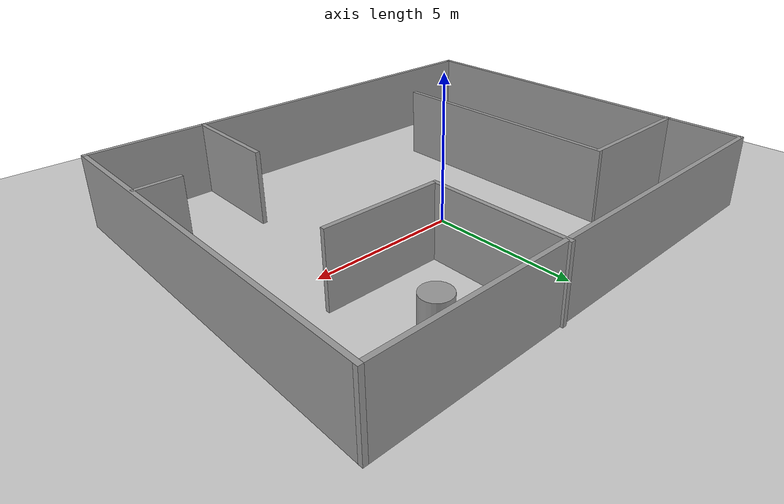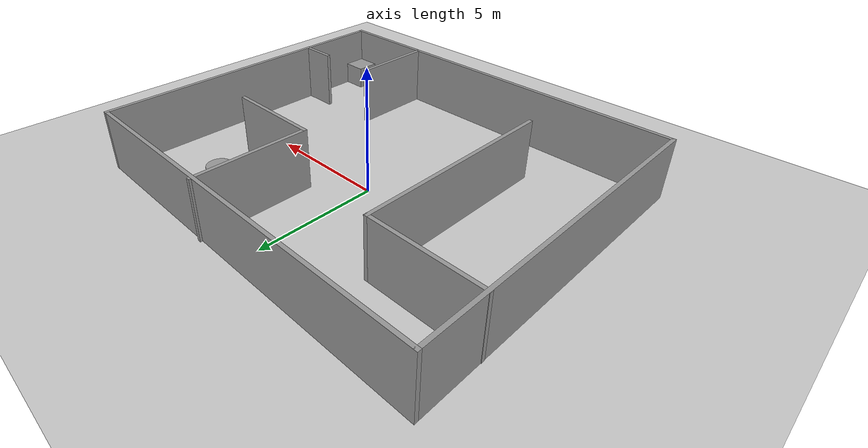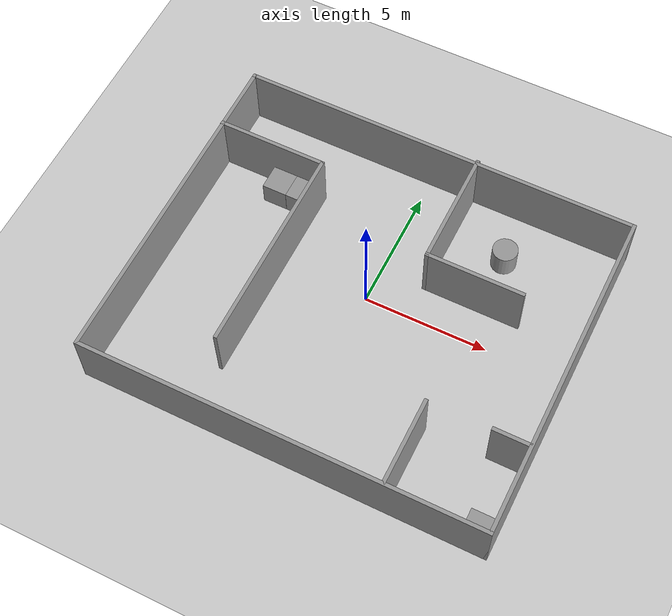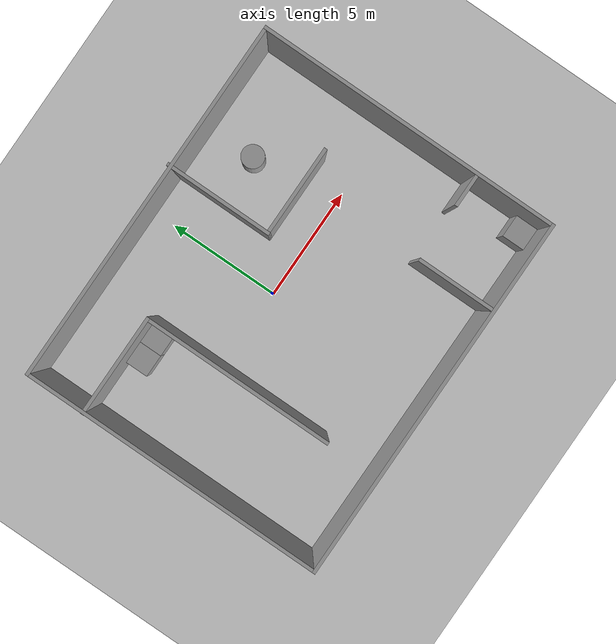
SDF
<sdf version="1.7">
 <world name="default">
  <model name="ground_plane">
   <static>1</static>
   <link name="link">
    <collision name="collision">
     <geometry><plane><normal>0 0 1</normal><size>100 100</size></plane></geometry>
     <surface>
      <contact><collide_bitmask>65535</collide_bitmask></contact>
      <friction><ode><mu>100</mu><mu2>50</mu2></ode></friction>
     </surface>
    </collision>
    <visual name="visual">
     <cast_shadows>0</cast_shadows>
     <geometry><plane><normal>0 0 1</normal><size>100 100</size></plane></geometry>
     <material>
      <script><uri>file://media/materials/scripts/gazebo.material</uri><name>Gazebo/Grey</name></script>
     </material>
    </visual>
   </link>
  </model>
  <light name="sun" type="directional">
   <pose>0 0 10 0 -0 0</pose>
   <diffuse>0.8 0.8 0.8 1</diffuse>
   <specular>0.2 0.2 0.2 1</specular>
   <attenuation>
    <range>1000</range>
    <constant>0.9</constant>
    <linear>0.01</linear>
    <quadratic>0.001</quadratic>
   </attenuation>
   <direction>-0.5 0.1 -0.9</direction>
   <spot><inner_angle>0</inner_angle><outer_angle>0</outer_angle><falloff>0</falloff></spot>
  </light>
  <scene><shadows>0</shadows><ambient>0.4 0.4 0.4 1</ambient><background>0.7 0.7 0.7 1</background></scene>
  <physics type="ode">
   <real_time_update_rate>1000</real_time_update_rate>
   <max_step_size>0.001</max_step_size>
   <real_time_factor>1</real_time_factor>
   <ode>
    <solver>
     <type>quick</type>
     <iters>150</iters>
     <precon_iters>0</precon_iters>
     <sor>1.4</sor>
     <use_dynamic_moi_rescaling>1</use_dynamic_moi_rescaling>
    </solver>
    <constraints>
     <cfm>1e-05</cfm>
     <erp>0.2</erp>
     <contact_max_correcting_vel>2000</contact_max_correcting_vel>
     <contact_surface_layer>0.01</contact_surface_layer>
    </constraints>
   </ode>
  </physics>
  <gravity>0 0 -9.8</gravity>
  <magnetic_field>6e-06 2.3e-05 -4.2e-05</magnetic_field>
  <atmosphere type="adiabatic"/>
  <audio><device>default</device></audio>
  <spherical_coordinates>
   <surface_model>EARTH_WGS84</surface_model>
   <latitude_deg>0</latitude_deg>
   <longitude_deg>0</longitude_deg>
   <elevation>0</elevation>
   <heading_deg>0</heading_deg>
  </spherical_coordinates>
  <model name="custom_map">
   <pose>0.182569 -0.67134 0 0 -0 0</pose>
   <link name="Wall_31">
    <collision name="Wall_31_Collision">
     <geometry><box><size>16.25 0.15 2.5</size></box></geometry>
     <pose>0 0 1.25 0 -0 0</pose>
    </collision>
    <visual name="Wall_31_Visual">
     <pose>0 0 1.25 0 -0 0</pose>
     <geometry><box><size>16.25 0.15 2.5</size></box></geometry>
     <material>
      <script><uri>file://media/materials/scripts/gazebo.material</uri><name>Gazebo/Grey</name></script>
      <ambient>1 1 1 1</ambient>
     </material>
     <meta><layer>0</layer></meta>
    </visual>
    <pose>0.007645 -6.71784 0 0 -0 0</pose>
   </link>
   <link name="Wall_32">
    <collision name="Wall_32_Collision">
     <geometry><box><size>13.5 0.15 2.5</size></box></geometry>
     <pose>0 0 1.25 0 -0 0</pose>
    </collision>
    <visual name="Wall_32_Visual">
     <pose>0 0 1.25 0 -0 0</pose>
     <geometry><box><size>13.5 0.15 2.5</size></box></geometry>
     <material>
      <script><uri>file://media/materials/scripts/gazebo.material</uri><name>Gazebo/Grey</name></script>
      <ambient>1 1 1 1</ambient>
     </material>
     <meta><layer>0</layer></meta>
    </visual>
    <pose>8.05765 -0.042838 0 0 -0 1.5708</pose>
   </link>
   <link name="Wall_33">
    <collision name="Wall_33_Collision">
     <geometry><box><size>16.25 0.15 2.5</size></box></geometry>
     <pose>0 0 1.25 0 -0 0</pose>
    </collision>
    <visual name="Wall_33_Visual">
     <pose>0 0 1.25 0 -0 0</pose>
     <geometry><box><size>16.25 0.15 2.5</size></box></geometry>
     <material>
      <script><uri>file://media/materials/scripts/gazebo.material</uri><name>Gazebo/Grey</name></script>
      <ambient>1 1 1 1</ambient>
     </material>
     <meta><layer>0</layer></meta>
    </visual>
    <pose>0.007645 6.63216 0 0 -0 3.14159</pose>
   </link>
   <link name="Wall_34">
    <collision name="Wall_34_Collision">
     <geometry><box><size>13.5 0.15 2.5</size></box></geometry>
     <pose>0 0 1.25 0 -0 0</pose>
    </collision>
    <visual name="Wall_34_Visual">
     <pose>0 0 1.25 0 -0 0</pose>
     <geometry><box><size>13.5 0.15 2.5</size></box></geometry>
     <material>
      <script><uri>file://media/materials/scripts/gazebo.material</uri><name>Gazebo/Grey</name></script>
      <ambient>1 1 1 1</ambient>
     </material>
     <meta><layer>0</layer></meta>
    </visual>
    <pose>-8.04236 -0.042838 0 0 -0 -1.5708</pose>
   </link>
   <link name="Wall_36">
    <collision name="Wall_36_Collision">
     <geometry><box><size>4.5 0.15 2.5</size></box></geometry>
     <pose>0 0 1.25 0 -0 0</pose>
    </collision>
    <visual name="Wall_36_Visual">
     <pose>0 0 1.25 0 -0 0</pose>
     <geometry><box><size>4.5 0.15 2.5</size></box></geometry>
     <material>
      <script><uri>file://media/materials/scripts/gazebo.material</uri><name>Gazebo/Grey</name></script>
      <ambient>1 1 1 1</ambient>
     </material>
     <meta><layer>0</layer></meta>
    </visual>
    <pose>-5.88265 4.04271 0 0 -0 0</pose>
   </link>
   <link name="Wall_37">
    <collision name="Wall_37_Collision">
     <geometry><box><size>8.5 0.15 2.5</size></box></geometry>
     <pose>0 0 1.25 0 -0 0</pose>
    </collision>
    <visual name="Wall_37_Visual">
     <pose>0 0 1.25 0 -0 0</pose>
     <geometry><box><size>8.5 0.15 2.5</size></box></geometry>
     <material>
      <script><uri>file://media/materials/scripts/gazebo.material</uri><name>Gazebo/Grey</name></script>
      <ambient>1 1 1 1</ambient>
     </material>
     <meta><layer>0</layer></meta>
    </visual>
    <pose>-3.70765 -0.132286 0 0 -0 -1.5708</pose>
   </link>
   <link name="Wall_39">
    <collision name="Wall_39_Collision">
     <geometry><box><size>3.5 0.15 2.5</size></box></geometry>
     <pose>0 0 1.25 0 -0 0</pose>
    </collision>
    <visual name="Wall_39_Visual">
     <pose>0 0 1.25 0 -0 0</pose>
     <geometry><box><size>3.5 0.15 2.5</size></box></geometry>
     <material>
      <script><uri>file://media/materials/scripts/gazebo.material</uri><name>Gazebo/Grey</name></script>
      <ambient>1 1 1 1</ambient>
     </material>
     <meta><layer>0</layer></meta>
    </visual>
    <pose>4.08742 -4.98279 0 0 -0 1.5708</pose>
   </link>
   <link name="Wall_41">
    <collision name="Wall_41_Collision">
     <geometry><box><size>1.5 0.15 2.5</size></box></geometry>
     <pose>0 0 1.25 0 -0 0</pose>
    </collision>
    <visual name="Wall_41_Visual">
     <pose>0 0 1.25 0 -0 0</pose>
     <geometry><box><size>1.5 0.15 2.5</size></box></geometry>
     <material>
      <script><uri>file://media/materials/scripts/gazebo.material</uri><name>Gazebo/Grey</name></script>
      <ambient>1 1 1 1</ambient>
     </material>
     <meta><layer>0</layer></meta>
    </visual>
    <pose>7.3181 -3.23363 0 0 -0 3.14159</pose>
   </link>
   <link name="Wall_43">
    <collision name="Wall_43_Collision">
     <geometry><box><size>4.75 0.15 2.5</size></box></geometry>
     <pose>0 0 1.25 0 -0 0</pose>
    </collision>
    <visual name="Wall_43_Visual">
     <pose>0 0 1.25 0 -0 0</pose>
     <geometry><box><size>4.75 0.15 2.5</size></box></geometry>
     <material>
      <script><uri>file://media/materials/scripts/gazebo.material</uri><name>Gazebo/Grey</name></script>
      <ambient>1 1 1 1</ambient>
     </material>
     <meta><layer>0</layer></meta>
    </visual>
    <pose>1.62631 4.41784 0 0 -0 -1.5708</pose>
   </link>
   <link name="Wall_44">
    <collision name="Wall_44_Collision">
     <geometry><box><size>4 0.15 2.5</size></box></geometry>
     <pose>0 0 1.25 0 -0 0</pose>
    </collision>
    <visual name="Wall_44_Visual">
     <pose>0 0 1.25 0 -0 0</pose>
     <geometry><box><size>4 0.15 2.5</size></box></geometry>
     <material>
      <script><uri>file://media/materials/scripts/gazebo.material</uri><name>Gazebo/Grey</name></script>
      <ambient>1 1 1 1</ambient>
     </material>
     <meta><layer>0</layer></meta>
    </visual>
    <pose>3.55131 2.11784 0 0 -0 0</pose>
   </link>
   <static>1</static>
  </model>
  <model name="unit_box">
   <pose>7.66524 -6.80562 0.5 0 -0 6e-06</pose>
   <link name="link">
    <inertial>
     <mass>1</mass>
     <inertia>
      <ixx>0.166667</ixx>
      <ixy>0</ixy>
      <ixz>0</ixz>
      <iyy>0.166667</iyy>
      <iyz>0</iyz>
      <izz>0.166667</izz>
     </inertia>
    </inertial>
    <collision name="collision"><geometry><box><size>1 1 1</size></box></geometry></collision>
    <visual name="visual">
     <geometry><box><size>1 1 1</size></box></geometry>
     <material>
      <script><name>Gazebo/Grey</name><uri>file://media/materials/scripts/gazebo.material</uri></script>
     </material>
    </visual>
   </link>
  </model>
  <model name="unit_box_0">
   <pose>-4.13284 2.79637 0.5 0 -0 1e-06</pose>
   <link name="link">
    <inertial>
     <mass>1</mass>
     <inertia>
      <ixx>0.166667</ixx>
      <ixy>0</ixy>
      <ixz>0</ixz>
      <iyy>0.166667</iyy>
      <iyz>0</iyz>
      <izz>0.166667</izz>
     </inertia>
    </inertial>
    <collision name="collision"><geometry><box><size>1 1 1</size></box></geometry></collision>
    <visual name="visual">
     <geometry><box><size>1 1 1</size></box></geometry>
     <material>
      <script><name>Gazebo/Grey</name><uri>file://media/materials/scripts/gazebo.material</uri></script>
     </material>
    </visual>
   </link>
  </model>
  <model name="unit_box_1">
   <pose>-5.13285 2.79472 0.5 0 -0 0</pose>
   <link name="link">
    <inertial>
     <mass>1</mass>
     <inertia>
      <ixx>0.166667</ixx>
      <ixy>0</ixy>
      <ixz>0</ixz>
      <iyy>0.166667</iyy>
      <iyz>0</iyz>
      <izz>0.166667</izz>
     </inertia>
    </inertial>
    <collision name="collision"><geometry><box><size>1 1 1</size></box></geometry></collision>
    <visual name="visual">
     <geometry><box><size>1 1 1</size></box></geometry>
     <material>
      <script><name>Gazebo/Grey</name><uri>file://media/materials/scripts/gazebo.material</uri></script>
     </material>
    </visual>
   </link>
  </model>
  <model name="unit_cylinder">
   <pose>4.08637 3.80073 0.499997 -4e-06 -4e-06 -0</pose>
   <link name="link">
    <inertial>
     <mass>1</mass>
     <inertia><ixx>0.145833</ixx><ixy>0</ixy><ixz>0</ixz><iyy>0.145833</iyy><iyz>0</iyz><izz>0.125</izz></inertia>
    </inertial>
    <collision name="collision">
     <geometry><cylinder><radius>0.5</radius><length>1</length></cylinder></geometry>
    </collision>
    <visual name="visual">
     <geometry><cylinder><radius>0.5</radius><length>1</length></cylinder></geometry>
     <material>
      <script><name>Gazebo/Grey</name><uri>file://media/materials/scripts/gazebo.material</uri></script>
     </material>
    </visual>
   </link>
  </model>
 </world>
</sdf>
